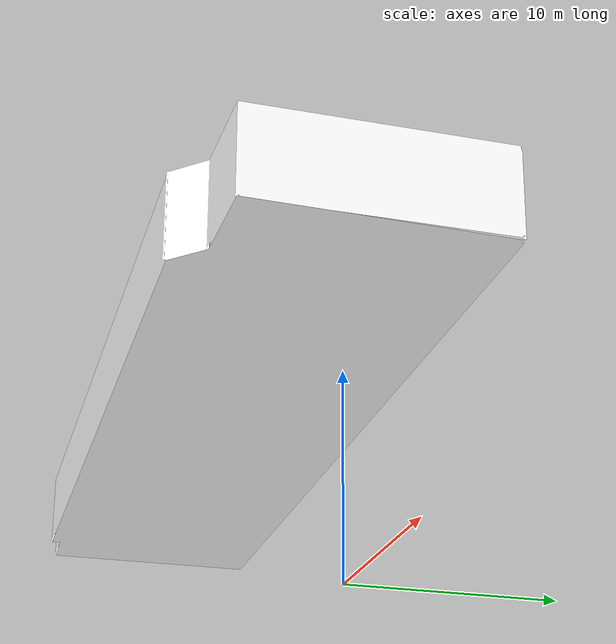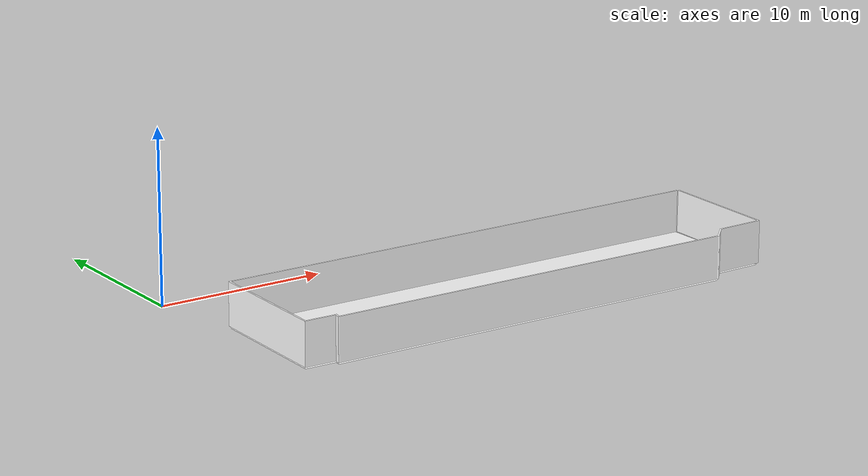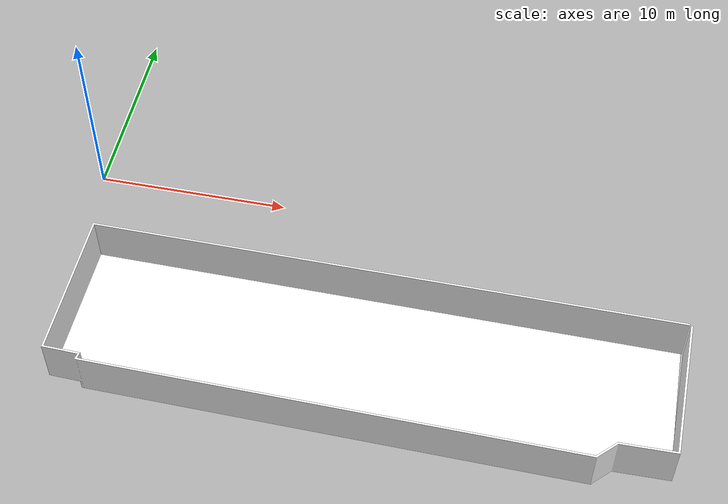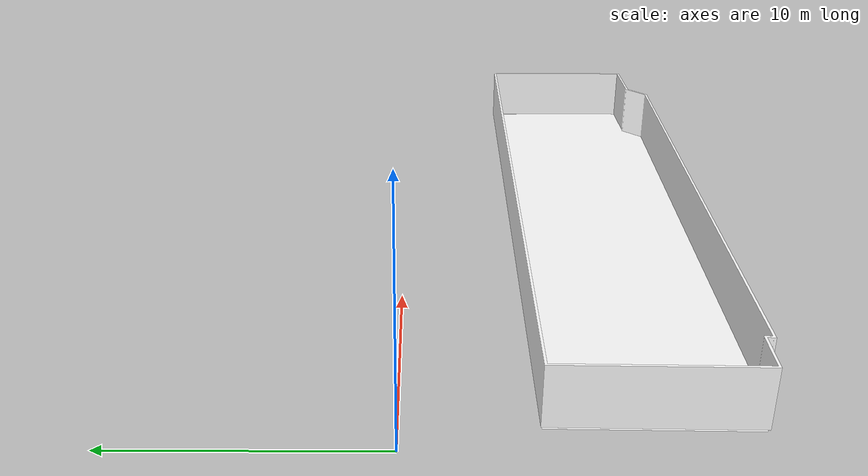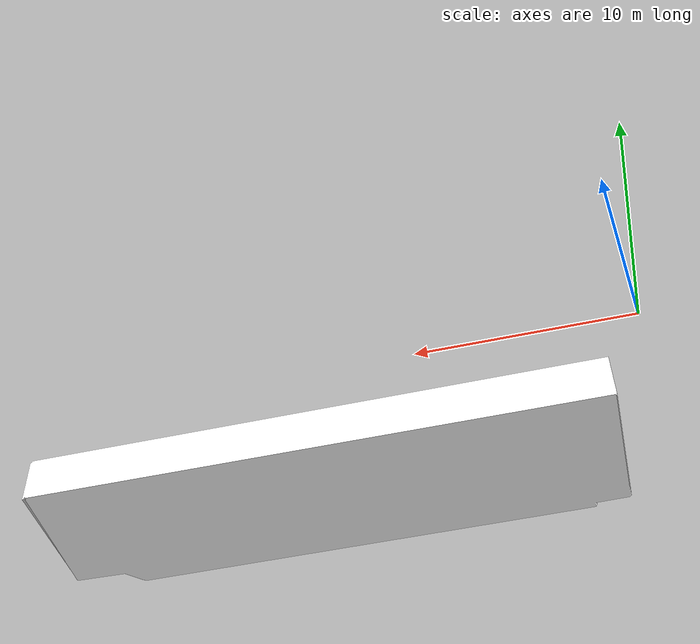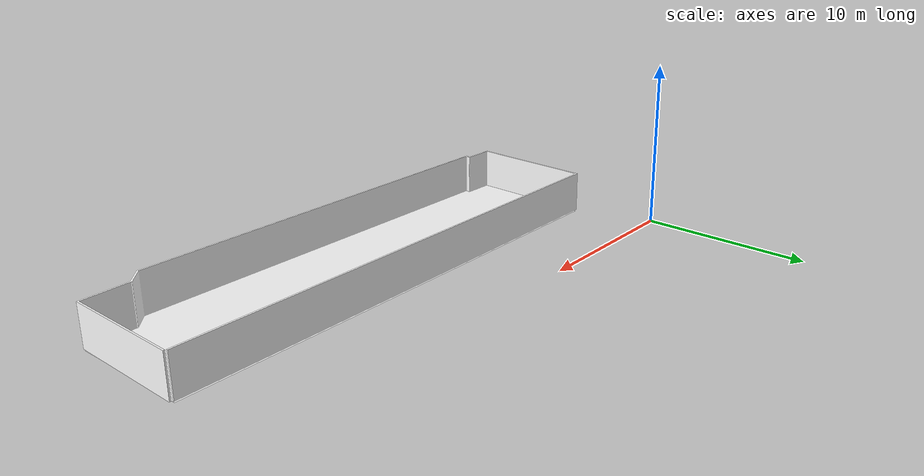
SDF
<?xml version='1.0' encoding='utf-8'?>
<sdf version="1.7">
  <model name="world_tb3_world_tb3">
    <static>true</static>
    <link name="floor_1">
      <visual name="visual">
        <geometry>
          <mesh>
            <uri>model://world_tb3_world_tb3/meshes/floor_1.obj</uri>
          </mesh>
        </geometry>
        <material>
          <diffuse>1.0 1.0 1.0</diffuse>
          <specular>0.1 0.1 0.1</specular>
          <pbr>
            <metal>
              <metalness>0.0</metalness>
              <albedo_map>model://world_tb3_world_tb3/meshes/blue_linoleum.png</albedo_map>
            </metal>
          </pbr>
          <script>
            <uri>model://world_tb3_world_tb3/meshes/</uri>
            <name>floor_1_Diffuse</name>
          </script>
        </material>
      </visual>
      <collision name="collision">
        <geometry>
          <mesh>
            <uri>model://world_tb3_world_tb3/meshes/floor_1.obj</uri>
          </mesh>
        </geometry>
        <surface>
          <contact>
            <collide_bitmask>0x01</collide_bitmask>
          </contact>
        </surface>
      </collision>
    </link>
    <link name="wall_1">
      <visual name="wall_1">
        <geometry>
          <mesh>
            <uri>model://world_tb3_world_tb3/meshes/wall_1.obj</uri>
          </mesh>
        </geometry>
        <transparency>0.0</transparency>
        <material>
          <diffuse>1.0 1.0 1.0</diffuse>
          <specular>0.1 0.1 0.1</specular>
          <pbr>
            <metal>
              <metalness>0.0</metalness>
              <albedo_map>model://world_tb3_world_tb3/meshes/default.png</albedo_map>
            </metal>
          </pbr>
          <script>
            <uri>model://world_tb3_world_tb3/meshes/</uri>
            <name>wall_1_Diffuse</name>
          </script>
        </material>
      </visual>
      <collision name="collision">
        <geometry>
          <mesh>
            <uri>model://world_tb3_world_tb3/meshes/wall_1.obj</uri>
          </mesh>
        </geometry>
        <surface>
          <contact>
            <collide_bitmask>0x01</collide_bitmask>
          </contact>
        </surface>
      </collision>
      <pose>1.206152515238143 -13.222845897533269 0 0 0 0</pose>
    </link>
  </model>
</sdf>
